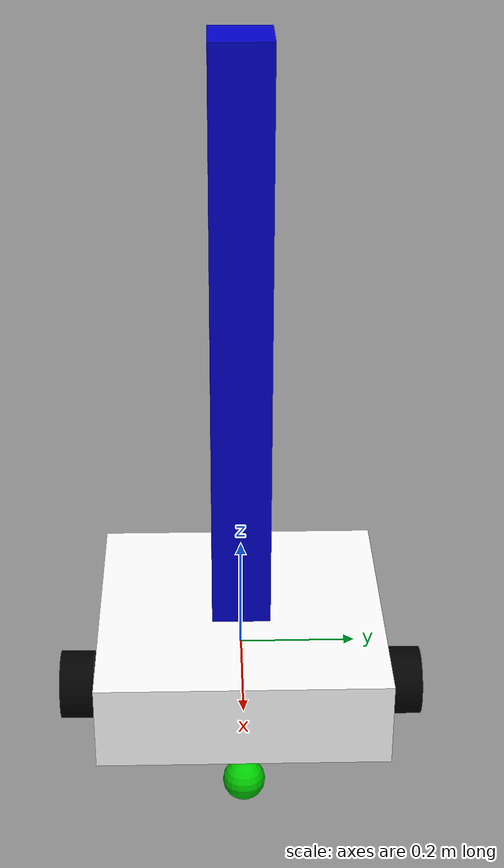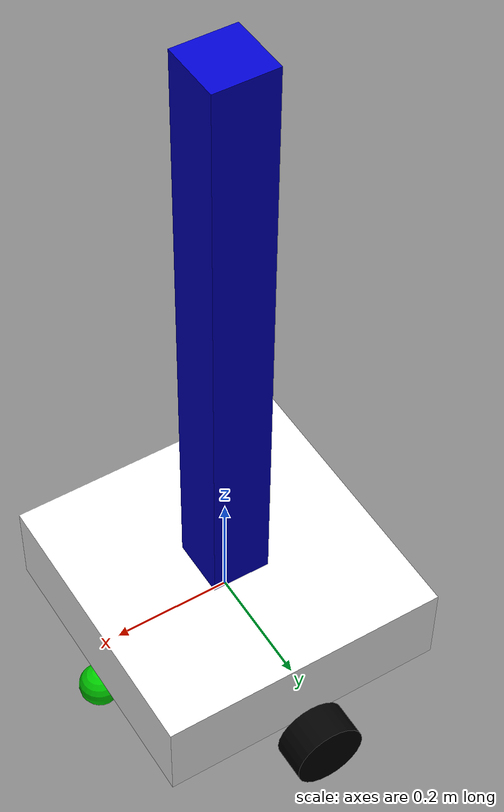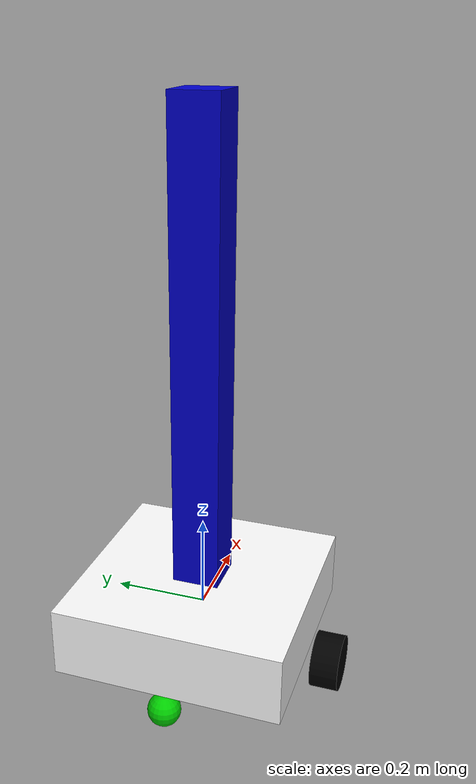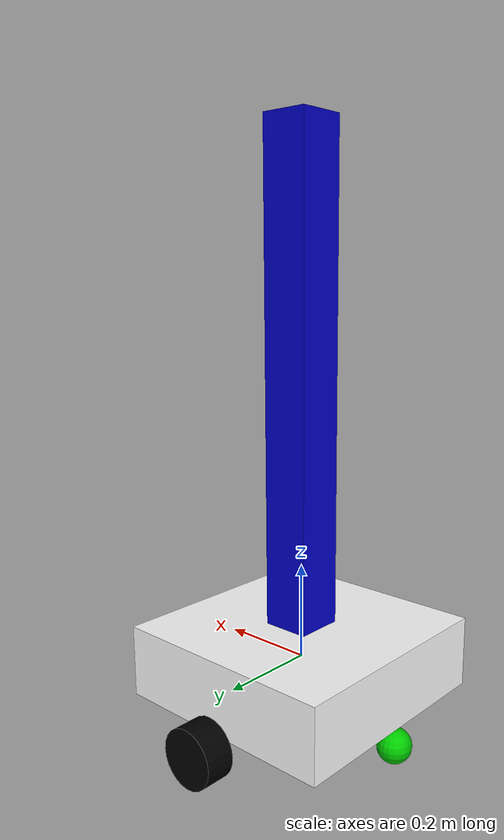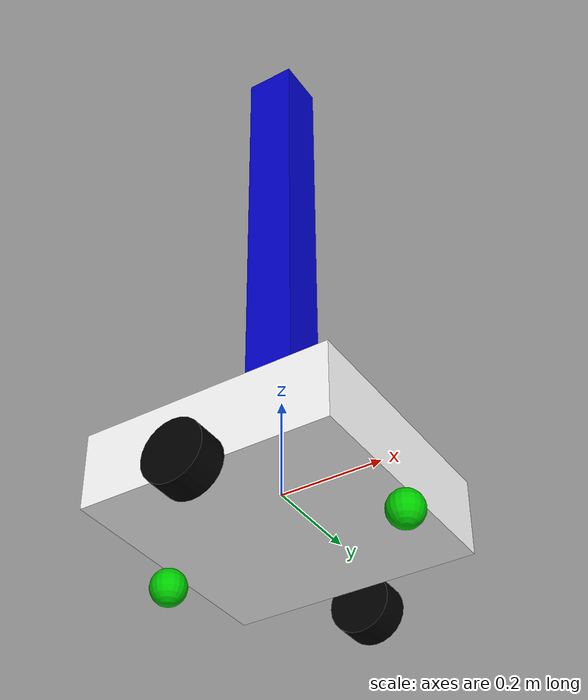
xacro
<?xml version="1.0"?>
<robot xmlns:xacro="http://www.ros.org/wiki/xacro" >

    <xacro:include filename="inertial_macros.xacro"/>

    <xacro:property name="chassis_length" value="0.49"/>
    <xacro:property name="chassis_width" value="0.49"/>
    <xacro:property name="chassis_height" value="0.15"/>
    <xacro:property name="chassis_mass" value="5.0"/>
    <xacro:property name="wheel_radius" value="0.06"/>
    <xacro:property name="wheel_thickness" value="0.06"/>
    <xacro:property name="wheel_mass" value="0.2"/>
    <xacro:property name="wheel_offset_x" value="0.226"/>
    <xacro:property name="wheel_offset_y" value="0.1485"/>
    <xacro:property name="wheel_offset_z" value="0.01"/>
    <xacro:property name="caster_wheel_radius" value="0.01"/>
    <xacro:property name="caster_wheel_mass" value="0.01"/>
    <xacro:property name="caster_wheel_offset_x" value="0.075"/>
    <xacro:property name="caster_wheel_offset_z" value="${wheel_offset_z - wheel_radius + caster_wheel_radius}"/>

    <material name="blue">
      <color rgba="0 0 0.8 1"/>
    </material>
    <material name="white">
      <color rgba="1 1 1 1"/>
    </material>
    <material name="black">
      <color rgba="0 0 0 1"/>
    </material>
    <material name="green">
        <color rgba="0.0 0.8 0.0 1.0"/>
    </material>

    <!-- BASE LINK -->
    <link name="base_link">

    </link>

    <!-- BASE_FOOTPRINT LINK -->
    <joint name="base_footprint_joint" type="fixed">
        <parent link="base_link"/>
        <child link="base_footprint"/>
        <origin xyz="0 0 0" rpy="0 0 0"/>
    </joint>

    <link name="base_footprint">
    </link>

    <!--CHASSIS OF THE ROBOT-->
    <link name="chassis_link">
        <visual>
            <geometry>
                <box size="0.49 0.49 0.15"/>
            </geometry>
            <material name="white"/>
            <origin xyz="0.0 0.0 0.0" rpy="0.0 0.0 0.0"/>
        </visual>
        <collision>
            <geometry>
                <box size="0.49 0.49 0.15"/>
            </geometry>
            <origin xyz="0.0 0.0 0.0" rpy="0.0 0.0 0.0"/>
        </collision>
        <xacro:inertial_box mass="5" x="0.49" y="0.49" z="0.15">
            <origin xyz="0 0 0" rpy="0 0 0"/>
        </xacro:inertial_box>
    </link>

    <joint name="chassis_joint" type="fixed">
        <origin xyz="0 0 0" rpy="0 0 0" />
        <parent link="base_link" />
        <child link="chassis_link" />
        <axis xyz="0 0 0" />
    </joint>

    <gazebo reference="chassis_link">
      <material>Gazebo/Orange</material>
    </gazebo>

    <!--RIGHT WHEEL-->
    <link name="right_wheel">
        <visual>
            <geometry>
                <cylinder radius="0.06" length="0.06"/>
            </geometry>
            <material name="black"/>
            <origin rpy="0 0 0" xyz="0 0 0"/>
        </visual>
        <collision>
            <geometry>
                <sphere radius="0.06"/>
            </geometry>
            <origin rpy="0 0 0" xyz="0 0 0"/>
        </collision>
        <xacro:inertial_cylinder mass="0.2" length="0.06" radius="0.06">
            <origin xyz="0 0 0" rpy="0 0 0"/>
        </xacro:inertial_cylinder>
    </link>

    <joint name="right_wheel_joint" type="continuous">
        <origin xyz="0 -0.29 -0.09" rpy="-1.5708 0 0" />
        <parent link="base_link" />
        <child link="right_wheel" />
        <axis xyz="0 0 1" />
    </joint>

    <gazebo reference="right_wheel">
      <material>Gazebo/Black</material>
    </gazebo>

    <!--LEFHT WHEEL-->
    <link name="left_wheel">
        <visual>
            <geometry>
                <cylinder radius="0.06" length="0.06"/>
            </geometry>
            <material name="black"/>
            <origin rpy="0 0 0" xyz="0 0 0"/>
        </visual>
        <collision>
            <origin rpy="0 0 0" xyz="0 0 0"/>
            <geometry>
                <sphere radius="0.06"/>
            </geometry>
        </collision>
        <xacro:inertial_cylinder mass="0.2" length="0.06" radius="0.06">
            <origin xyz="0 0 0" rpy="0 0 0"/>
        </xacro:inertial_cylinder>
    </link>

    <joint name="left_wheel_joint" type="continuous">
        <origin xyz="0 0.29 -0.09" rpy="-1.5708 0 0" />
        <parent link="base_link" />
        <child link="left_wheel" />
        <axis xyz="0 0 1" />
    </joint>

    <gazebo reference="left_wheel">
      <material>Gazebo/Black</material>
    </gazebo>

    <!--CASTER_WHEEL-->
    <link name="caster_wheel">
        <visual>
            <geometry>
                <sphere radius="0.035"/>
            </geometry>
            <material name="green"/>
            <origin rpy="0 0 0" xyz="0 0 0"/>
        </visual>
        <collision>
            <origin rpy="0 0 0" xyz="0 0 0"/>
            <geometry>
                <sphere radius="0.035"/>
            </geometry>
        </collision>
        <xacro:inertial_sphere mass="0.1" radius="0.035">
            <origin xyz="0 0 0" rpy="0 0 0"/>
        </xacro:inertial_sphere>
    </link>

    <joint name="caster_wheel_joint" type="fixed">
        <origin xyz="-0.24 0 -0.110" rpy="0 0 0" />
        <parent link="chassis_link" />
        <child link="caster_wheel" />
        <axis xyz="0 0 0" />
    </joint>

    <gazebo reference="caster_wheel">
        <material>Gazebo/Green</material>
        <mu1 value="0.001"/>
        <mu2 value="0.001"/>
    </gazebo>

    <!--CASTER_WHEEL2-->
    <link name="caster_wheel2">
        <visual>
            <geometry>
                <sphere radius="0.035"/>
            </geometry>
            <material name="green"/>
            <origin rpy="0 0 0" xyz="0 0 0"/>
        </visual>
        <collision>
            <origin rpy="0 0 0" xyz="0 0 0"/>
            <geometry>
                <sphere radius="0.035"/>
            </geometry>
        </collision>
        <xacro:inertial_sphere mass="0.1" radius="0.035">
            <origin xyz="0 0 0" rpy="0 0 0"/>
        </xacro:inertial_sphere>
    </link>

    <joint name="caster_wheel_joint2" type="fixed">
        <origin xyz="0.24 0 -0.110" rpy="0 0 0" />
        <parent link="chassis_link" />
        <child link="caster_wheel2" />
        <axis xyz="0 0 0" />
    </joint>

    <gazebo reference="caster_wheel2">
        <material>Gazebo/Green</material>
        <mu1 value="0.001"/>
        <mu2 value="0.001"/>
    </gazebo>

    <!--LIGHT TUBE-->
    <link name="light_tube">
        <visual>
            <geometry>
                <box size="0.1 0.1 1.0"/>
            </geometry>
            <material name="blue"/>
            <origin rpy="0 0 0" xyz="0 0 0"/>
        </visual>
        <collision>
            <origin rpy="0 0 0" xyz="0 0 0"/>
            <geometry>
                <box size="0.1 0.1 1.0"/>
            </geometry>
        </collision>
        <xacro:inertial_box mass="3" x="0.1" y="0.1" z="1.0">
            <origin xyz="0 0 0" rpy="0 0 0"/>
        </xacro:inertial_box>
    </link>

    <joint name="light_tube_joint" type="fixed">
        <origin xyz="0.0 0.0 0.575" rpy="0 0 0" />
        <parent link="chassis_link" />
        <child link="light_tube" />
        <axis xyz="0 0 0" />
    </joint>

    <gazebo reference="light_tube">
      <material>Gazebo/Blue</material>
    </gazebo>

</robot>
